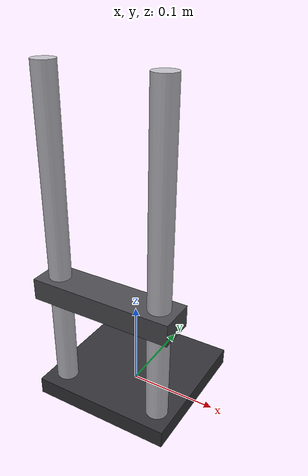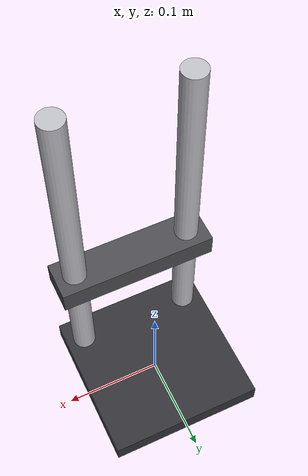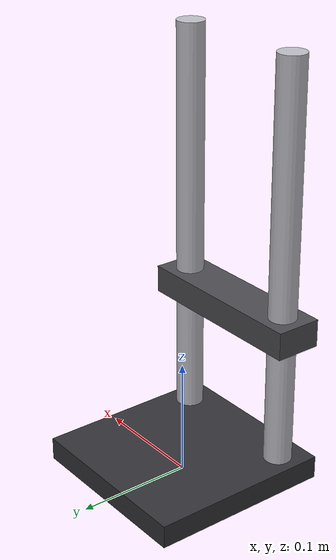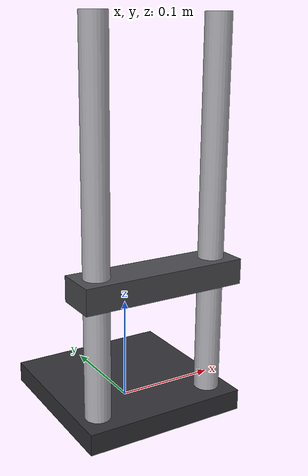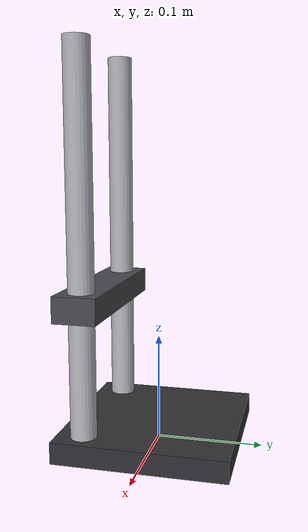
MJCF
<?xml version="1.0" encoding="utf-8"?>
<mujoco model="tensile_fabric_tester">
  <compiler angle="radian" autolimits="true"/>
  <default>
    <default class="body"><geom contype="1" conaffinity="1"/></default>
  </default>
  <worldbody>
    <body name="base">
      <geom type="box" size="0.08 0.08 0.01" pos="0 0 0.01" rgba="0.2 0.2 0.22 1" class="body"/>
      <geom type="cylinder" size="0.012 0.18" pos="-0.06 -0.055 0.19" rgba="0.75 0.75 0.78 1" class="body"/>
      <geom type="cylinder" size="0.012 0.18" pos="0.06 -0.055 0.19" rgba="0.75 0.75 0.78 1" class="body"/>
      <body name="upper_clamp" pos="0 -0.055 0.14">
        <joint name="upper_clamp_joint" type="slide" axis="0 0 1" range="0.04 0.30" damping="1.0" frictionloss="0.3"/>
  <geom type="box" size="0.08 0.02 0.012" pos="0 0 0" rgba="0.3 0.3 0.32 1" class="body"/>
      </body>
    </body>
  </worldbody>
</mujoco>
